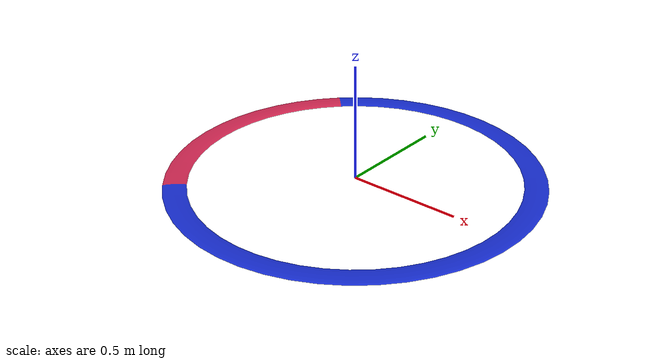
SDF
<?xml version='1.0'?>
<sdf version="1.5">

  <model name="circle_marker">
    <static>true</static>
    <link name="link">

      <inertial>
        <mass>10</mass>
        <inertia>
          <ixx>1.0</ixx>       <!-- for a box: ixx = 0.083 * mass * (y*y + z*z) -->
          <ixy>0.0</ixy>       <!-- for a box: ixy = 0 -->
          <ixz>0.0</ixz>       <!-- for a box: ixz = 0 -->
          <iyy>1.0</iyy>       <!-- for a box: iyy = 0.083 * mass * (x*x + z*z) -->
          <iyz>0.0</iyz>       <!-- for a box: iyz = 0 -->
          <izz>1.0</izz>      <!-- for a box: izz = 0.083 * mass * (x*x + y*y) -->
        </inertia>
      </inertial>

      <visual name="visual">
        <geometry>
          <mesh>
            <uri>model://circle_marker/circle_marker.dae</uri>
          </mesh>
        </geometry>
      </visual>

    </link>
  </model>

</sdf>
